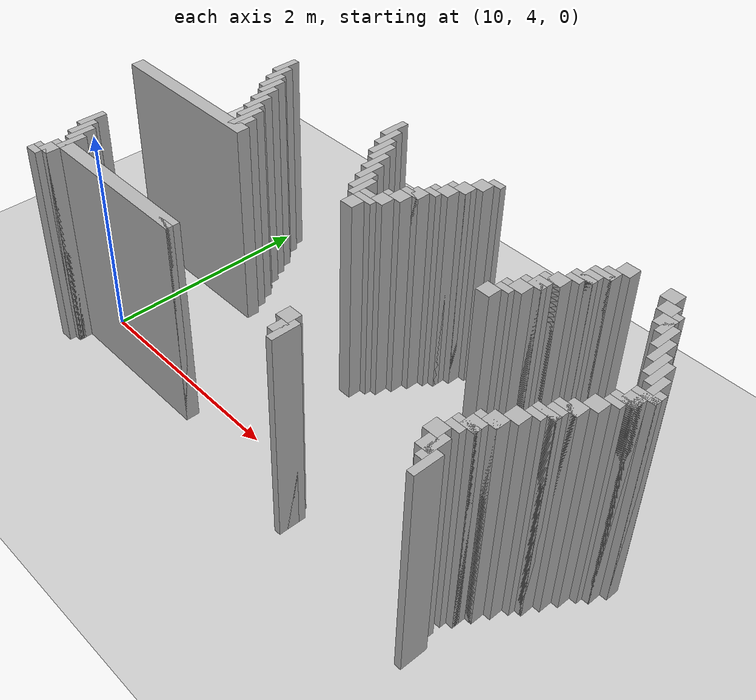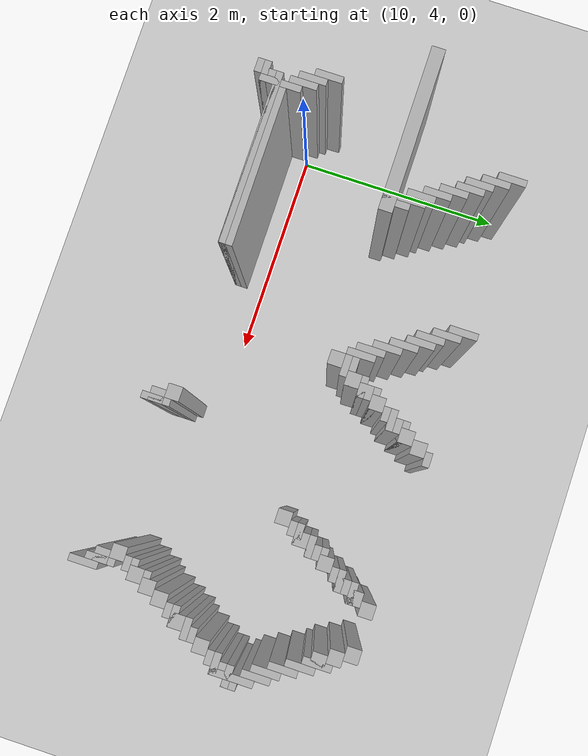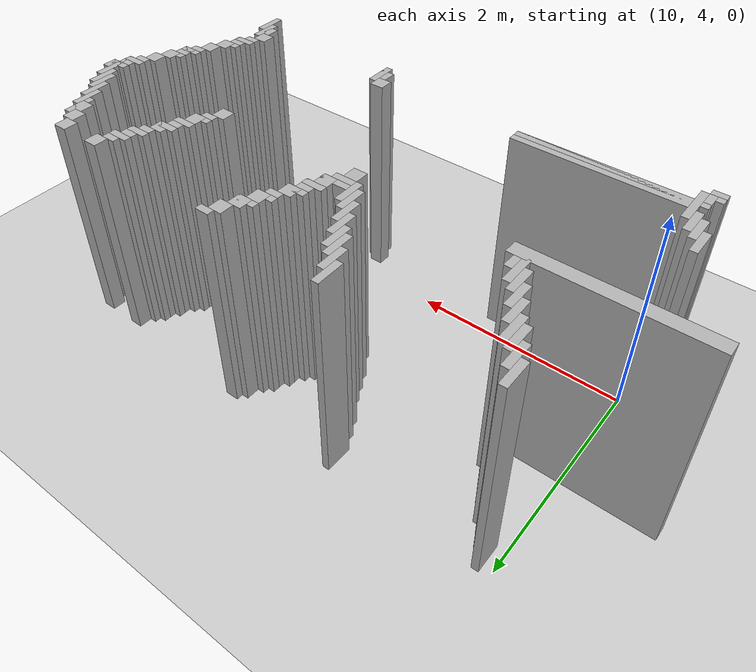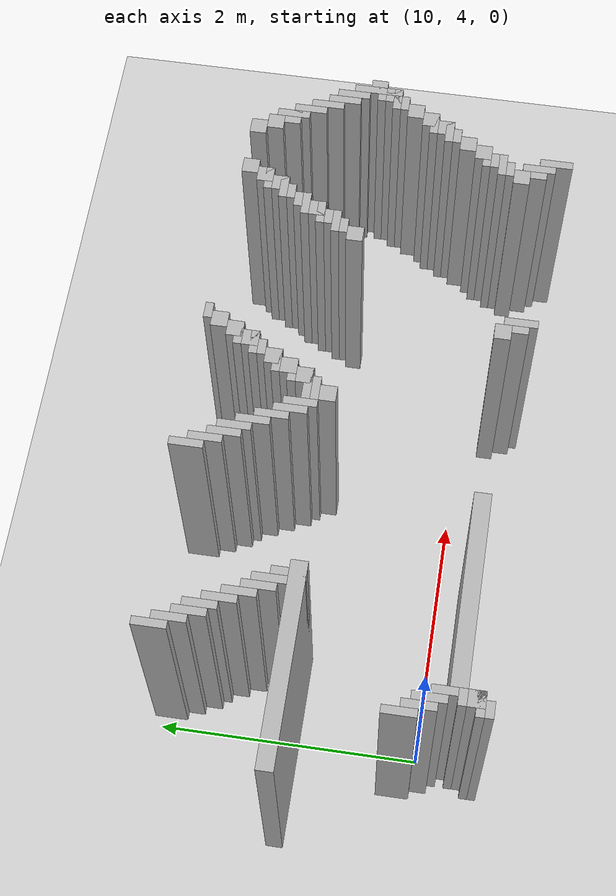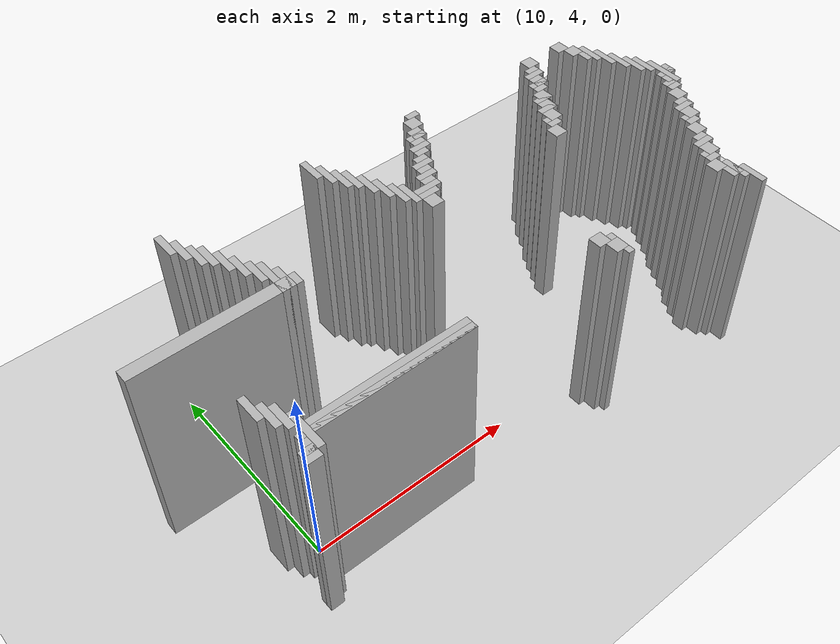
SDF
<sdf version="1.6">
 <world name="slam_world">
  <model name="ground_plane">
   <static>true</static>
   <link name="link">
    <collision name="collision">
     <geometry><plane><normal>0 0 1</normal><size>100 100</size></plane></geometry>
    </collision>
    <visual name="visual">
     <geometry><plane><normal>0 0 1</normal><size>100 100</size></plane></geometry>
     <material>
      <ambient>0.8 0.8 0.8 1</ambient>
      <diffuse>0.8 0.8 0.8 1</diffuse>
      <specular>0.8 0.8 0.8 1</specular>
     </material>
    </visual>
   </link>
  </model>
  <model name="wall_1721">
   <static>true</static>
   <pose>10.117021276595743 5.936170212765957 1.0 0 0 0</pose>
   <link name="link">
    <collision name="collision">
     <geometry><box><size>0.06382978723404255 0.2553191489361702 2.0</size></box></geometry>
    </collision>
    <visual name="visual">
     <geometry><box><size>0.06382978723404255 0.2553191489361702 2.0</size></box></geometry>
     <material><ambient>0.5 0.5 0.5 1</ambient><diffuse>0.7 0.7 0.7 1</diffuse></material>
    </visual>
   </link>
  </model>
  <model name="wall_1722">
   <static>true</static>
   <pose>11.52127659574468 5.936170212765957 1.0 0 0 0</pose>
   <link name="link">
    <collision name="collision">
     <geometry><box><size>0.06382978723404255 0.2553191489361702 2.0</size></box></geometry>
    </collision>
    <visual name="visual">
     <geometry><box><size>0.06382978723404255 0.2553191489361702 2.0</size></box></geometry>
     <material><ambient>0.5 0.5 0.5 1</ambient><diffuse>0.7 0.7 0.7 1</diffuse></material>
    </visual>
   </link>
  </model>
  <model name="wall_1728">
   <static>true</static>
   <pose>12.638297872340425 5.968085106382978 1.0 0 0 0</pose>
   <link name="link">
    <collision name="collision">
     <geometry><box><size>0.1276595744680851 0.06382978723404255 2.0</size></box></geometry>
    </collision>
    <visual name="visual">
     <geometry><box><size>0.1276595744680851 0.06382978723404255 2.0</size></box></geometry>
     <material><ambient>0.5 0.5 0.5 1</ambient><diffuse>0.7 0.7 0.7 1</diffuse></material>
    </visual>
   </link>
  </model>
  <model name="wall_1736">
   <static>true</static>
   <pose>10.180851063829786 5.8085106382978715 1.0 0 0 0</pose>
   <link name="link">
    <collision name="collision">
     <geometry><box><size>0.06382978723404255 0.2553191489361702 2.0</size></box></geometry>
    </collision>
    <visual name="visual">
     <geometry><box><size>0.06382978723404255 0.2553191489361702 2.0</size></box></geometry>
     <material><ambient>0.5 0.5 0.5 1</ambient><diffuse>0.7 0.7 0.7 1</diffuse></material>
    </visual>
   </link>
  </model>
  <model name="wall_1737">
   <static>true</static>
   <pose>11.585106382978722 5.8085106382978715 1.0 0 0 0</pose>
   <link name="link">
    <collision name="collision">
     <geometry><box><size>0.06382978723404255 0.2553191489361702 2.0</size></box></geometry>
    </collision>
    <visual name="visual">
     <geometry><box><size>0.06382978723404255 0.2553191489361702 2.0</size></box></geometry>
     <material><ambient>0.5 0.5 0.5 1</ambient><diffuse>0.7 0.7 0.7 1</diffuse></material>
    </visual>
   </link>
  </model>
  <model name="wall_1738">
   <static>true</static>
   <pose>12.574468085106382 5.872340425531914 1.0 0 0 0</pose>
   <link name="link">
    <collision name="collision">
     <geometry><box><size>0.1276595744680851 0.1276595744680851 2.0</size></box></geometry>
    </collision>
    <visual name="visual">
     <geometry><box><size>0.1276595744680851 0.1276595744680851 2.0</size></box></geometry>
     <material><ambient>0.5 0.5 0.5 1</ambient><diffuse>0.7 0.7 0.7 1</diffuse></material>
    </visual>
   </link>
  </model>
  <model name="wall_1739">
   <static>true</static>
   <pose>13.978723404255318 5.872340425531914 1.0 0 0 0</pose>
   <link name="link">
    <collision name="collision">
     <geometry><box><size>0.1276595744680851 0.1276595744680851 2.0</size></box></geometry>
    </collision>
    <visual name="visual">
     <geometry><box><size>0.1276595744680851 0.1276595744680851 2.0</size></box></geometry>
     <material><ambient>0.5 0.5 0.5 1</ambient><diffuse>0.7 0.7 0.7 1</diffuse></material>
    </visual>
   </link>
  </model>
  <model name="wall_1740">
   <static>true</static>
   <pose>14.361702127659573 5.872340425531914 1.0 0 0 0</pose>
   <link name="link">
    <collision name="collision">
     <geometry><box><size>0.1276595744680851 0.1276595744680851 2.0</size></box></geometry>
    </collision>
    <visual name="visual">
     <geometry><box><size>0.1276595744680851 0.1276595744680851 2.0</size></box></geometry>
     <material><ambient>0.5 0.5 0.5 1</ambient><diffuse>0.7 0.7 0.7 1</diffuse></material>
    </visual>
   </link>
  </model>
  <model name="wall_1746">
   <static>true</static>
   <pose>10.24468085106383 5.680851063829786 1.0 0 0 0</pose>
   <link name="link">
    <collision name="collision">
     <geometry><box><size>0.06382978723404255 0.2553191489361702 2.0</size></box></geometry>
    </collision>
    <visual name="visual">
     <geometry><box><size>0.06382978723404255 0.2553191489361702 2.0</size></box></geometry>
     <material><ambient>0.5 0.5 0.5 1</ambient><diffuse>0.7 0.7 0.7 1</diffuse></material>
    </visual>
   </link>
  </model>
  <model name="wall_1747">
   <static>true</static>
   <pose>11.648936170212766 5.680851063829786 1.0 0 0 0</pose>
   <link name="link">
    <collision name="collision">
     <geometry><box><size>0.06382978723404255 0.2553191489361702 2.0</size></box></geometry>
    </collision>
    <visual name="visual">
     <geometry><box><size>0.06382978723404255 0.2553191489361702 2.0</size></box></geometry>
     <material><ambient>0.5 0.5 0.5 1</ambient><diffuse>0.7 0.7 0.7 1</diffuse></material>
    </visual>
   </link>
  </model>
  <model name="wall_1748">
   <static>true</static>
   <pose>12.51063829787234 5.744680851063829 1.0 0 0 0</pose>
   <link name="link">
    <collision name="collision">
     <geometry><box><size>0.1276595744680851 0.1276595744680851 2.0</size></box></geometry>
    </collision>
    <visual name="visual">
     <geometry><box><size>0.1276595744680851 0.1276595744680851 2.0</size></box></geometry>
     <material><ambient>0.5 0.5 0.5 1</ambient><diffuse>0.7 0.7 0.7 1</diffuse></material>
    </visual>
   </link>
  </model>
  <model name="wall_1749">
   <static>true</static>
   <pose>13.914893617021276 5.744680851063829 1.0 0 0 0</pose>
   <link name="link">
    <collision name="collision">
     <geometry><box><size>0.1276595744680851 0.1276595744680851 2.0</size></box></geometry>
    </collision>
    <visual name="visual">
     <geometry><box><size>0.1276595744680851 0.1276595744680851 2.0</size></box></geometry>
     <material><ambient>0.5 0.5 0.5 1</ambient><diffuse>0.7 0.7 0.7 1</diffuse></material>
    </visual>
   </link>
  </model>
  <model name="wall_1750">
   <static>true</static>
   <pose>14.425531914893616 5.744680851063829 1.0 0 0 0</pose>
   <link name="link">
    <collision name="collision">
     <geometry><box><size>0.1276595744680851 0.1276595744680851 2.0</size></box></geometry>
    </collision>
    <visual name="visual">
     <geometry><box><size>0.1276595744680851 0.1276595744680851 2.0</size></box></geometry>
     <material><ambient>0.5 0.5 0.5 1</ambient><diffuse>0.7 0.7 0.7 1</diffuse></material>
    </visual>
   </link>
  </model>
  <model name="wall_1756">
   <static>true</static>
   <pose>10.308510638297872 5.617021276595744 1.0 0 0 0</pose>
   <link name="link">
    <collision name="collision">
     <geometry><box><size>0.06382978723404255 0.2553191489361702 2.0</size></box></geometry>
    </collision>
    <visual name="visual">
     <geometry><box><size>0.06382978723404255 0.2553191489361702 2.0</size></box></geometry>
     <material><ambient>0.5 0.5 0.5 1</ambient><diffuse>0.7 0.7 0.7 1</diffuse></material>
    </visual>
   </link>
  </model>
  <model name="wall_1757">
   <static>true</static>
   <pose>11.712765957446807 5.617021276595744 1.0 0 0 0</pose>
   <link name="link">
    <collision name="collision">
     <geometry><box><size>0.06382978723404255 0.2553191489361702 2.0</size></box></geometry>
    </collision>
    <visual name="visual">
     <geometry><box><size>0.06382978723404255 0.2553191489361702 2.0</size></box></geometry>
     <material><ambient>0.5 0.5 0.5 1</ambient><diffuse>0.7 0.7 0.7 1</diffuse></material>
    </visual>
   </link>
  </model>
  <model name="wall_1758">
   <static>true</static>
   <pose>12.478723404255318 5.712765957446808 1.0 0 0 0</pose>
   <link name="link">
    <collision name="collision">
     <geometry><box><size>0.19148936170212766 0.06382978723404255 2.0</size></box></geometry>
    </collision>
    <visual name="visual">
     <geometry><box><size>0.19148936170212766 0.06382978723404255 2.0</size></box></geometry>
     <material><ambient>0.5 0.5 0.5 1</ambient><diffuse>0.7 0.7 0.7 1</diffuse></material>
    </visual>
   </link>
  </model>
  <model name="wall_1759">
   <static>true</static>
   <pose>13.882978723404253 5.712765957446808 1.0 0 0 0</pose>
   <link name="link">
    <collision name="collision">
     <geometry><box><size>0.19148936170212766 0.06382978723404255 2.0</size></box></geometry>
    </collision>
    <visual name="visual">
     <geometry><box><size>0.19148936170212766 0.06382978723404255 2.0</size></box></geometry>
     <material><ambient>0.5 0.5 0.5 1</ambient><diffuse>0.7 0.7 0.7 1</diffuse></material>
    </visual>
   </link>
  </model>
  <model name="wall_1760">
   <static>true</static>
   <pose>14.52127659574468 5.617021276595744 1.0 0 0 0</pose>
   <link name="link">
    <collision name="collision">
     <geometry><box><size>0.06382978723404255 0.2553191489361702 2.0</size></box></geometry>
    </collision>
    <visual name="visual">
     <geometry><box><size>0.06382978723404255 0.2553191489361702 2.0</size></box></geometry>
     <material><ambient>0.5 0.5 0.5 1</ambient><diffuse>0.7 0.7 0.7 1</diffuse></material>
    </visual>
   </link>
  </model>
  <model name="wall_1764">
   <static>true</static>
   <pose>12.446808510638297 5.617021276595744 1.0 0 0 0</pose>
   <link name="link">
    <collision name="collision">
     <geometry><box><size>0.1276595744680851 0.1276595744680851 2.0</size></box></geometry>
    </collision>
    <visual name="visual">
     <geometry><box><size>0.1276595744680851 0.1276595744680851 2.0</size></box></geometry>
     <material><ambient>0.5 0.5 0.5 1</ambient><diffuse>0.7 0.7 0.7 1</diffuse></material>
    </visual>
   </link>
  </model>
  <model name="wall_1765">
   <static>true</static>
   <pose>13.851063829787233 5.617021276595744 1.0 0 0 0</pose>
   <link name="link">
    <collision name="collision">
     <geometry><box><size>0.1276595744680851 0.1276595744680851 2.0</size></box></geometry>
    </collision>
    <visual name="visual">
     <geometry><box><size>0.1276595744680851 0.1276595744680851 2.0</size></box></geometry>
     <material><ambient>0.5 0.5 0.5 1</ambient><diffuse>0.7 0.7 0.7 1</diffuse></material>
    </visual>
   </link>
  </model>
  <model name="wall_1766">
   <static>true</static>
   <pose>14.489361702127658 5.617021276595744 1.0 0 0 0</pose>
   <link name="link">
    <collision name="collision">
     <geometry><box><size>0.1276595744680851 0.1276595744680851 2.0</size></box></geometry>
    </collision>
    <visual name="visual">
     <geometry><box><size>0.1276595744680851 0.1276595744680851 2.0</size></box></geometry>
     <material><ambient>0.5 0.5 0.5 1</ambient><diffuse>0.7 0.7 0.7 1</diffuse></material>
    </visual>
   </link>
  </model>
  <model name="wall_1772">
   <static>true</static>
   <pose>10.372340425531915 5.489361702127659 1.0 0 0 0</pose>
   <link name="link">
    <collision name="collision">
     <geometry><box><size>0.06382978723404255 0.2553191489361702 2.0</size></box></geometry>
    </collision>
    <visual name="visual">
     <geometry><box><size>0.06382978723404255 0.2553191489361702 2.0</size></box></geometry>
     <material><ambient>0.5 0.5 0.5 1</ambient><diffuse>0.7 0.7 0.7 1</diffuse></material>
    </visual>
   </link>
  </model>
  <model name="wall_1773">
   <static>true</static>
   <pose>11.77659574468085 5.489361702127659 1.0 0 0 0</pose>
   <link name="link">
    <collision name="collision">
     <geometry><box><size>0.06382978723404255 0.2553191489361702 2.0</size></box></geometry>
    </collision>
    <visual name="visual">
     <geometry><box><size>0.06382978723404255 0.2553191489361702 2.0</size></box></geometry>
     <material><ambient>0.5 0.5 0.5 1</ambient><diffuse>0.7 0.7 0.7 1</diffuse></material>
    </visual>
   </link>
  </model>
  <model name="wall_1774">
   <static>true</static>
   <pose>12.414893617021276 5.585106382978723 1.0 0 0 0</pose>
   <link name="link">
    <collision name="collision">
     <geometry><box><size>0.19148936170212766 0.06382978723404255 2.0</size></box></geometry>
    </collision>
    <visual name="visual">
     <geometry><box><size>0.19148936170212766 0.06382978723404255 2.0</size></box></geometry>
     <material><ambient>0.5 0.5 0.5 1</ambient><diffuse>0.7 0.7 0.7 1</diffuse></material>
    </visual>
   </link>
  </model>
  <model name="wall_1775">
   <static>true</static>
   <pose>13.819148936170212 5.585106382978723 1.0 0 0 0</pose>
   <link name="link">
    <collision name="collision">
     <geometry><box><size>0.19148936170212766 0.06382978723404255 2.0</size></box></geometry>
    </collision>
    <visual name="visual">
     <geometry><box><size>0.19148936170212766 0.06382978723404255 2.0</size></box></geometry>
     <material><ambient>0.5 0.5 0.5 1</ambient><diffuse>0.7 0.7 0.7 1</diffuse></material>
    </visual>
   </link>
  </model>
  <model name="wall_1776">
   <static>true</static>
   <pose>14.585106382978722 5.489361702127659 1.0 0 0 0</pose>
   <link name="link">
    <collision name="collision">
     <geometry><box><size>0.06382978723404255 0.2553191489361702 2.0</size></box></geometry>
    </collision>
    <visual name="visual">
     <geometry><box><size>0.06382978723404255 0.2553191489361702 2.0</size></box></geometry>
     <material><ambient>0.5 0.5 0.5 1</ambient><diffuse>0.7 0.7 0.7 1</diffuse></material>
    </visual>
   </link>
  </model>
  <model name="wall_1779">
   <static>true</static>
   <pose>12.382978723404255 5.5212765957446805 1.0 0 0 0</pose>
   <link name="link">
    <collision name="collision">
     <geometry><box><size>0.1276595744680851 0.06382978723404255 2.0</size></box></geometry>
    </collision>
    <visual name="visual">
     <geometry><box><size>0.1276595744680851 0.06382978723404255 2.0</size></box></geometry>
     <material><ambient>0.5 0.5 0.5 1</ambient><diffuse>0.7 0.7 0.7 1</diffuse></material>
    </visual>
   </link>
  </model>
  <model name="wall_1780">
   <static>true</static>
   <pose>13.787234042553191 5.5212765957446805 1.0 0 0 0</pose>
   <link name="link">
    <collision name="collision">
     <geometry><box><size>0.1276595744680851 0.06382978723404255 2.0</size></box></geometry>
    </collision>
    <visual name="visual">
     <geometry><box><size>0.1276595744680851 0.06382978723404255 2.0</size></box></geometry>
     <material><ambient>0.5 0.5 0.5 1</ambient><diffuse>0.7 0.7 0.7 1</diffuse></material>
    </visual>
   </link>
  </model>
  <model name="wall_1786">
   <static>true</static>
   <pose>10.436170212765957 5.361702127659574 1.0 0 0 0</pose>
   <link name="link">
    <collision name="collision">
     <geometry><box><size>0.06382978723404255 0.2553191489361702 2.0</size></box></geometry>
    </collision>
    <visual name="visual">
     <geometry><box><size>0.06382978723404255 0.2553191489361702 2.0</size></box></geometry>
     <material><ambient>0.5 0.5 0.5 1</ambient><diffuse>0.7 0.7 0.7 1</diffuse></material>
    </visual>
   </link>
  </model>
  <model name="wall_1787">
   <static>true</static>
   <pose>11.840425531914892 5.361702127659574 1.0 0 0 0</pose>
   <link name="link">
    <collision name="collision">
     <geometry><box><size>0.06382978723404255 0.2553191489361702 2.0</size></box></geometry>
    </collision>
    <visual name="visual">
     <geometry><box><size>0.06382978723404255 0.2553191489361702 2.0</size></box></geometry>
     <material><ambient>0.5 0.5 0.5 1</ambient><diffuse>0.7 0.7 0.7 1</diffuse></material>
    </visual>
   </link>
  </model>
  <model name="wall_1788">
   <static>true</static>
   <pose>12.319148936170212 5.425531914893616 1.0 0 0 0</pose>
   <link name="link">
    <collision name="collision">
     <geometry><box><size>0.1276595744680851 0.1276595744680851 2.0</size></box></geometry>
    </collision>
    <visual name="visual">
     <geometry><box><size>0.1276595744680851 0.1276595744680851 2.0</size></box></geometry>
     <material><ambient>0.5 0.5 0.5 1</ambient><diffuse>0.7 0.7 0.7 1</diffuse></material>
    </visual>
   </link>
  </model>
  <model name="wall_1789">
   <static>true</static>
   <pose>13.723404255319148 5.425531914893616 1.0 0 0 0</pose>
   <link name="link">
    <collision name="collision">
     <geometry><box><size>0.1276595744680851 0.1276595744680851 2.0</size></box></geometry>
    </collision>
    <visual name="visual">
     <geometry><box><size>0.1276595744680851 0.1276595744680851 2.0</size></box></geometry>
     <material><ambient>0.5 0.5 0.5 1</ambient><diffuse>0.7 0.7 0.7 1</diffuse></material>
    </visual>
   </link>
  </model>
  <model name="wall_1790">
   <static>true</static>
   <pose>14.648936170212766 5.361702127659574 1.0 0 0 0</pose>
   <link name="link">
    <collision name="collision">
     <geometry><box><size>0.06382978723404255 0.2553191489361702 2.0</size></box></geometry>
    </collision>
    <visual name="visual">
     <geometry><box><size>0.06382978723404255 0.2553191489361702 2.0</size></box></geometry>
     <material><ambient>0.5 0.5 0.5 1</ambient><diffuse>0.7 0.7 0.7 1</diffuse></material>
    </visual>
   </link>
  </model>
  <model name="wall_1793">
   <static>true</static>
   <pose>12.287234042553191 5.3936170212765955 1.0 0 0 0</pose>
   <link name="link">
    <collision name="collision">
     <geometry><box><size>0.19148936170212766 0.06382978723404255 2.0</size></box></geometry>
    </collision>
    <visual name="visual">
     <geometry><box><size>0.19148936170212766 0.06382978723404255 2.0</size></box></geometry>
     <material><ambient>0.5 0.5 0.5 1</ambient><diffuse>0.7 0.7 0.7 1</diffuse></material>
    </visual>
   </link>
  </model>
  <model name="wall_1794">
   <static>true</static>
   <pose>13.691489361702127 5.3936170212765955 1.0 0 0 0</pose>
   <link name="link">
    <collision name="collision">
     <geometry><box><size>0.19148936170212766 0.06382978723404255 2.0</size></box></geometry>
    </collision>
    <visual name="visual">
     <geometry><box><size>0.19148936170212766 0.06382978723404255 2.0</size></box></geometry>
     <material><ambient>0.5 0.5 0.5 1</ambient><diffuse>0.7 0.7 0.7 1</diffuse></material>
    </visual>
   </link>
  </model>
  <model name="wall_1800">
   <static>true</static>
   <pose>10.5 5.234042553191489 1.0 0 0 0</pose>
   <link name="link">
    <collision name="collision">
     <geometry><box><size>0.06382978723404255 0.2553191489361702 2.0</size></box></geometry>
    </collision>
    <visual name="visual">
     <geometry><box><size>0.06382978723404255 0.2553191489361702 2.0</size></box></geometry>
     <material><ambient>0.5 0.5 0.5 1</ambient><diffuse>0.7 0.7 0.7 1</diffuse></material>
    </visual>
   </link>
  </model>
  <model name="wall_1801">
   <static>true</static>
   <pose>11.904255319148936 5.234042553191489 1.0 0 0 0</pose>
   <link name="link">
    <collision name="collision">
     <geometry><box><size>0.06382978723404255 0.2553191489361702 2.0</size></box></geometry>
    </collision>
    <visual name="visual">
     <geometry><box><size>0.06382978723404255 0.2553191489361702 2.0</size></box></geometry>
     <material><ambient>0.5 0.5 0.5 1</ambient><diffuse>0.7 0.7 0.7 1</diffuse></material>
    </visual>
   </link>
  </model>
  <model name="wall_1802">
   <static>true</static>
   <pose>12.25531914893617 5.297872340425531 1.0 0 0 0</pose>
   <link name="link">
    <collision name="collision">
     <geometry><box><size>0.1276595744680851 0.1276595744680851 2.0</size></box></geometry>
    </collision>
    <visual name="visual">
     <geometry><box><size>0.1276595744680851 0.1276595744680851 2.0</size></box></geometry>
     <material><ambient>0.5 0.5 0.5 1</ambient><diffuse>0.7 0.7 0.7 1</diffuse></material>
    </visual>
   </link>
  </model>
  <model name="wall_1803">
   <static>true</static>
   <pose>13.659574468085106 5.297872340425531 1.0 0 0 0</pose>
   <link name="link">
    <collision name="collision">
     <geometry><box><size>0.1276595744680851 0.1276595744680851 2.0</size></box></geometry>
    </collision>
    <visual name="visual">
     <geometry><box><size>0.1276595744680851 0.1276595744680851 2.0</size></box></geometry>
     <material><ambient>0.5 0.5 0.5 1</ambient><diffuse>0.7 0.7 0.7 1</diffuse></material>
    </visual>
   </link>
  </model>
  <model name="wall_1804">
   <static>true</static>
   <pose>14.712765957446807 5.234042553191489 1.0 0 0 0</pose>
   <link name="link">
    <collision name="collision">
     <geometry><box><size>0.06382978723404255 0.2553191489361702 2.0</size></box></geometry>
    </collision>
    <visual name="visual">
     <geometry><box><size>0.06382978723404255 0.2553191489361702 2.0</size></box></geometry>
     <material><ambient>0.5 0.5 0.5 1</ambient><diffuse>0.7 0.7 0.7 1</diffuse></material>
    </visual>
   </link>
  </model>
  <model name="wall_1810">
   <static>true</static>
   <pose>10.563829787234042 5.106382978723404 1.0 0 0 0</pose>
   <link name="link">
    <collision name="collision">
     <geometry><box><size>0.06382978723404255 0.3829787234042553 2.0</size></box></geometry>
    </collision>
    <visual name="visual">
     <geometry><box><size>0.06382978723404255 0.3829787234042553 2.0</size></box></geometry>
     <material><ambient>0.5 0.5 0.5 1</ambient><diffuse>0.7 0.7 0.7 1</diffuse></material>
    </visual>
   </link>
  </model>
  <model name="wall_1811">
   <static>true</static>
   <pose>11.968085106382977 5.170212765957446 1.0 0 0 0</pose>
   <link name="link">
    <collision name="collision">
     <geometry><box><size>0.06382978723404255 0.2553191489361702 2.0</size></box></geometry>
    </collision>
    <visual name="visual">
     <geometry><box><size>0.06382978723404255 0.2553191489361702 2.0</size></box></geometry>
     <material><ambient>0.5 0.5 0.5 1</ambient><diffuse>0.7 0.7 0.7 1</diffuse></material>
    </visual>
   </link>
  </model>
  <model name="wall_1812">
   <static>true</static>
   <pose>12.223404255319148 5.26595744680851 1.0 0 0 0</pose>
   <link name="link">
    <collision name="collision">
     <geometry><box><size>0.19148936170212766 0.06382978723404255 2.0</size></box></geometry>
    </collision>
    <visual name="visual">
     <geometry><box><size>0.19148936170212766 0.06382978723404255 2.0</size></box></geometry>
     <material><ambient>0.5 0.5 0.5 1</ambient><diffuse>0.7 0.7 0.7 1</diffuse></material>
    </visual>
   </link>
  </model>
  <model name="wall_1813">
   <static>true</static>
   <pose>13.627659574468083 5.26595744680851 1.0 0 0 0</pose>
   <link name="link">
    <collision name="collision">
     <geometry><box><size>0.19148936170212766 0.06382978723404255 2.0</size></box></geometry>
    </collision>
    <visual name="visual">
     <geometry><box><size>0.19148936170212766 0.06382978723404255 2.0</size></box></geometry>
     <material><ambient>0.5 0.5 0.5 1</ambient><diffuse>0.7 0.7 0.7 1</diffuse></material>
    </visual>
   </link>
  </model>
  <model name="wall_1814">
   <static>true</static>
   <pose>14.77659574468085 5.170212765957446 1.0 0 0 0</pose>
   <link name="link">
    <collision name="collision">
     <geometry><box><size>0.06382978723404255 0.2553191489361702 2.0</size></box></geometry>
    </collision>
    <visual name="visual">
     <geometry><box><size>0.06382978723404255 0.2553191489361702 2.0</size></box></geometry>
     <material><ambient>0.5 0.5 0.5 1</ambient><diffuse>0.7 0.7 0.7 1</diffuse></material>
    </visual>
   </link>
  </model>
  <model name="wall_1817">
   <static>true</static>
   <pose>12.191489361702127 5.170212765957446 1.0 0 0 0</pose>
   <link name="link">
    <collision name="collision">
     <geometry><box><size>0.1276595744680851 0.1276595744680851 2.0</size></box></geometry>
    </collision>
    <visual name="visual">
     <geometry><box><size>0.1276595744680851 0.1276595744680851 2.0</size></box></geometry>
     <material><ambient>0.5 0.5 0.5 1</ambient><diffuse>0.7 0.7 0.7 1</diffuse></material>
    </visual>
   </link>
  </model>
  <model name="wall_1818">
   <static>true</static>
   <pose>13.595744680851062 5.170212765957446 1.0 0 0 0</pose>
   <link name="link">
    <collision name="collision">
     <geometry><box><size>0.1276595744680851 0.1276595744680851 2.0</size></box></geometry>
    </collision>
    <visual name="visual">
     <geometry><box><size>0.1276595744680851 0.1276595744680851 2.0</size></box></geometry>
     <material><ambient>0.5 0.5 0.5 1</ambient><diffuse>0.7 0.7 0.7 1</diffuse></material>
    </visual>
   </link>
  </model>
  <model name="wall_1822">
   <static>true</static>
   <pose>10.627659574468085 5.042553191489361 1.0 0 0 0</pose>
   <link name="link">
    <collision name="collision">
     <geometry><box><size>0.06382978723404255 0.2553191489361702 2.0</size></box></geometry>
    </collision>
    <visual name="visual">
     <geometry><box><size>0.06382978723404255 0.2553191489361702 2.0</size></box></geometry>
     <material><ambient>0.5 0.5 0.5 1</ambient><diffuse>0.7 0.7 0.7 1</diffuse></material>
    </visual>
   </link>
  </model>
  <model name="wall_1823">
   <static>true</static>
   <pose>12.127659574468083 5.138297872340425 1.0 0 0 0</pose>
   <link name="link">
    <collision name="collision">
     <geometry><box><size>0.2553191489361702 0.06382978723404255 2.0</size></box></geometry>
    </collision>
    <visual name="visual">
     <geometry><box><size>0.2553191489361702 0.06382978723404255 2.0</size></box></geometry>
     <material><ambient>0.5 0.5 0.5 1</ambient><diffuse>0.7 0.7 0.7 1</diffuse></material>
    </visual>
   </link>
  </model>
  <model name="wall_1824">
   <static>true</static>
   <pose>13.563829787234042 5.138297872340425 1.0 0 0 0</pose>
   <link name="link">
    <collision name="collision">
     <geometry><box><size>0.19148936170212766 0.06382978723404255 2.0</size></box></geometry>
    </collision>
    <visual name="visual">
     <geometry><box><size>0.19148936170212766 0.06382978723404255 2.0</size></box></geometry>
     <material><ambient>0.5 0.5 0.5 1</ambient><diffuse>0.7 0.7 0.7 1</diffuse></material>
    </visual>
   </link>
  </model>
  <model name="wall_1825">
   <static>true</static>
   <pose>14.840425531914892 4.978723404255319 1.0 0 0 0</pose>
   <link name="link">
    <collision name="collision">
     <geometry><box><size>0.06382978723404255 0.3829787234042553 2.0</size></box></geometry>
    </collision>
    <visual name="visual">
     <geometry><box><size>0.06382978723404255 0.3829787234042553 2.0</size></box></geometry>
     <material><ambient>0.5 0.5 0.5 1</ambient><diffuse>0.7 0.7 0.7 1</diffuse></material>
    </visual>
   </link>
  </model>
  <model name="wall_1828">
   <static>true</static>
   <pose>12.095744680851062 5.074468085106383 1.0 0 0 0</pose>
   <link name="link">
    <collision name="collision">
     <geometry><box><size>0.19148936170212766 0.06382978723404255 2.0</size></box></geometry>
    </collision>
    <visual name="visual">
     <geometry><box><size>0.19148936170212766 0.06382978723404255 2.0</size></box></geometry>
     <material><ambient>0.5 0.5 0.5 1</ambient><diffuse>0.7 0.7 0.7 1</diffuse></material>
    </visual>
   </link>
  </model>
  <model name="wall_1829">
   <static>true</static>
   <pose>13.53191489361702 5.074468085106383 1.0 0 0 0</pose>
   <link name="link">
    <collision name="collision">
     <geometry><box><size>0.1276595744680851 0.06382978723404255 2.0</size></box></geometry>
    </collision>
    <visual name="visual">
     <geometry><box><size>0.1276595744680851 0.06382978723404255 2.0</size></box></geometry>
     <material><ambient>0.5 0.5 0.5 1</ambient><diffuse>0.7 0.7 0.7 1</diffuse></material>
    </visual>
   </link>
  </model>
  <model name="wall_1833">
   <static>true</static>
   <pose>9.957446808510637 4.978723404255319 1.0 0 0 0</pose>
   <link name="link">
    <collision name="collision">
     <geometry><box><size>1.5319148936170213 0.1276595744680851 2.0</size></box></geometry>
    </collision>
    <visual name="visual">
     <geometry><box><size>1.5319148936170213 0.1276595744680851 2.0</size></box></geometry>
     <material><ambient>0.5 0.5 0.5 1</ambient><diffuse>0.7 0.7 0.7 1</diffuse></material>
    </visual>
   </link>
  </model>
  <model name="wall_1834">
   <static>true</static>
   <pose>12.063829787234042 4.978723404255319 1.0 0 0 0</pose>
   <link name="link">
    <collision name="collision">
     <geometry><box><size>0.1276595744680851 0.1276595744680851 2.0</size></box></geometry>
    </collision>
    <visual name="visual">
     <geometry><box><size>0.1276595744680851 0.1276595744680851 2.0</size></box></geometry>
     <material><ambient>0.5 0.5 0.5 1</ambient><diffuse>0.7 0.7 0.7 1</diffuse></material>
    </visual>
   </link>
  </model>
  <model name="wall_1835">
   <static>true</static>
   <pose>13.468085106382977 4.978723404255319 1.0 0 0 0</pose>
   <link name="link">
    <collision name="collision">
     <geometry><box><size>0.1276595744680851 0.1276595744680851 2.0</size></box></geometry>
    </collision>
    <visual name="visual">
     <geometry><box><size>0.1276595744680851 0.1276595744680851 2.0</size></box></geometry>
     <material><ambient>0.5 0.5 0.5 1</ambient><diffuse>0.7 0.7 0.7 1</diffuse></material>
    </visual>
   </link>
  </model>
  <model name="wall_1836">
   <static>true</static>
   <pose>14.904255319148936 4.978723404255319 1.0 0 0 0</pose>
   <link name="link">
    <collision name="collision">
     <geometry><box><size>0.06382978723404255 0.1276595744680851 2.0</size></box></geometry>
    </collision>
    <visual name="visual">
     <geometry><box><size>0.06382978723404255 0.1276595744680851 2.0</size></box></geometry>
     <material><ambient>0.5 0.5 0.5 1</ambient><diffuse>0.7 0.7 0.7 1</diffuse></material>
    </visual>
   </link>
  </model>
  <model name="wall_1838">
   <static>true</static>
   <pose>14.840425531914892 4.946808510638298 1.0 0 0 0</pose>
   <link name="link">
    <collision name="collision">
     <geometry><box><size>0.19148936170212766 0.06382978723404255 2.0</size></box></geometry>
    </collision>
    <visual name="visual">
     <geometry><box><size>0.19148936170212766 0.06382978723404255 2.0</size></box></geometry>
     <material><ambient>0.5 0.5 0.5 1</ambient><diffuse>0.7 0.7 0.7 1</diffuse></material>
    </visual>
   </link>
  </model>
  <model name="wall_1842">
   <static>true</static>
   <pose>14.808510638297872 4.8510638297872335 1.0 0 0 0</pose>
   <link name="link">
    <collision name="collision">
     <geometry><box><size>0.1276595744680851 0.1276595744680851 2.0</size></box></geometry>
    </collision>
    <visual name="visual">
     <geometry><box><size>0.1276595744680851 0.1276595744680851 2.0</size></box></geometry>
     <material><ambient>0.5 0.5 0.5 1</ambient><diffuse>0.7 0.7 0.7 1</diffuse></material>
    </visual>
   </link>
  </model>
  <model name="wall_1847">
   <static>true</static>
   <pose>14.77659574468085 4.819148936170213 1.0 0 0 0</pose>
   <link name="link">
    <collision name="collision">
     <geometry><box><size>0.19148936170212766 0.06382978723404255 2.0</size></box></geometry>
    </collision>
    <visual name="visual">
     <geometry><box><size>0.19148936170212766 0.06382978723404255 2.0</size></box></geometry>
     <material><ambient>0.5 0.5 0.5 1</ambient><diffuse>0.7 0.7 0.7 1</diffuse></material>
    </visual>
   </link>
  </model>
  <model name="wall_1853">
   <static>true</static>
   <pose>14.744680851063828 4.75531914893617 1.0 0 0 0</pose>
   <link name="link">
    <collision name="collision">
     <geometry><box><size>0.1276595744680851 0.06382978723404255 2.0</size></box></geometry>
    </collision>
    <visual name="visual">
     <geometry><box><size>0.1276595744680851 0.06382978723404255 2.0</size></box></geometry>
     <material><ambient>0.5 0.5 0.5 1</ambient><diffuse>0.7 0.7 0.7 1</diffuse></material>
    </visual>
   </link>
  </model>
  <model name="wall_1859">
   <static>true</static>
   <pose>14.680851063829786 4.659574468085106 1.0 0 0 0</pose>
   <link name="link">
    <collision name="collision">
     <geometry><box><size>0.1276595744680851 0.1276595744680851 2.0</size></box></geometry>
    </collision>
    <visual name="visual">
     <geometry><box><size>0.1276595744680851 0.1276595744680851 2.0</size></box></geometry>
     <material><ambient>0.5 0.5 0.5 1</ambient><diffuse>0.7 0.7 0.7 1</diffuse></material>
    </visual>
   </link>
  </model>
  <model name="wall_1865">
   <static>true</static>
   <pose>14.617021276595743 4.531914893617021 1.0 0 0 0</pose>
   <link name="link">
    <collision name="collision">
     <geometry><box><size>0.1276595744680851 0.1276595744680851 2.0</size></box></geometry>
    </collision>
    <visual name="visual">
     <geometry><box><size>0.1276595744680851 0.1276595744680851 2.0</size></box></geometry>
     <material><ambient>0.5 0.5 0.5 1</ambient><diffuse>0.7 0.7 0.7 1</diffuse></material>
    </visual>
   </link>
  </model>
  <model name="wall_1871">
   <static>true</static>
   <pose>14.585106382978722 4.5 1.0 0 0 0</pose>
   <link name="link">
    <collision name="collision">
     <geometry><box><size>0.19148936170212766 0.06382978723404255 2.0</size></box></geometry>
    </collision>
    <visual name="visual">
     <geometry><box><size>0.19148936170212766 0.06382978723404255 2.0</size></box></geometry>
     <material><ambient>0.5 0.5 0.5 1</ambient><diffuse>0.7 0.7 0.7 1</diffuse></material>
    </visual>
   </link>
  </model>
  <model name="wall_1875">
   <static>true</static>
   <pose>14.553191489361701 4.404255319148936 1.0 0 0 0</pose>
   <link name="link">
    <collision name="collision">
     <geometry><box><size>0.1276595744680851 0.1276595744680851 2.0</size></box></geometry>
    </collision>
    <visual name="visual">
     <geometry><box><size>0.1276595744680851 0.1276595744680851 2.0</size></box></geometry>
     <material><ambient>0.5 0.5 0.5 1</ambient><diffuse>0.7 0.7 0.7 1</diffuse></material>
    </visual>
   </link>
  </model>
  <model name="wall_1881">
   <static>true</static>
   <pose>14.52127659574468 4.372340425531915 1.0 0 0 0</pose>
   <link name="link">
    <collision name="collision">
     <geometry><box><size>0.19148936170212766 0.06382978723404255 2.0</size></box></geometry>
    </collision>
    <visual name="visual">
     <geometry><box><size>0.19148936170212766 0.06382978723404255 2.0</size></box></geometry>
     <material><ambient>0.5 0.5 0.5 1</ambient><diffuse>0.7 0.7 0.7 1</diffuse></material>
    </visual>
   </link>
  </model>
  <model name="wall_1884">
   <static>true</static>
   <pose>14.489361702127658 4.308510638297872 1.0 0 0 0</pose>
   <link name="link">
    <collision name="collision">
     <geometry><box><size>0.1276595744680851 0.06382978723404255 2.0</size></box></geometry>
    </collision>
    <visual name="visual">
     <geometry><box><size>0.1276595744680851 0.06382978723404255 2.0</size></box></geometry>
     <material><ambient>0.5 0.5 0.5 1</ambient><diffuse>0.7 0.7 0.7 1</diffuse></material>
    </visual>
   </link>
  </model>
  <model name="wall_1889">
   <static>true</static>
   <pose>9.734042553191488 4.148936170212766 1.0 0 0 0</pose>
   <link name="link">
    <collision name="collision">
     <geometry><box><size>0.06382978723404255 0.2553191489361702 2.0</size></box></geometry>
    </collision>
    <visual name="visual">
     <geometry><box><size>0.06382978723404255 0.2553191489361702 2.0</size></box></geometry>
     <material><ambient>0.5 0.5 0.5 1</ambient><diffuse>0.7 0.7 0.7 1</diffuse></material>
    </visual>
   </link>
  </model>
  <model name="wall_1890">
   <static>true</static>
   <pose>14.425531914893616 4.212765957446808 1.0 0 0 0</pose>
   <link name="link">
    <collision name="collision">
     <geometry><box><size>0.1276595744680851 0.1276595744680851 2.0</size></box></geometry>
    </collision>
    <visual name="visual">
     <geometry><box><size>0.1276595744680851 0.1276595744680851 2.0</size></box></geometry>
     <material><ambient>0.5 0.5 0.5 1</ambient><diffuse>0.7 0.7 0.7 1</diffuse></material>
    </visual>
   </link>
  </model>
  <model name="wall_1895">
   <static>true</static>
   <pose>9.797872340425531 4.0212765957446805 1.0 0 0 0</pose>
   <link name="link">
    <collision name="collision">
     <geometry><box><size>0.06382978723404255 0.2553191489361702 2.0</size></box></geometry>
    </collision>
    <visual name="visual">
     <geometry><box><size>0.06382978723404255 0.2553191489361702 2.0</size></box></geometry>
     <material><ambient>0.5 0.5 0.5 1</ambient><diffuse>0.7 0.7 0.7 1</diffuse></material>
    </visual>
   </link>
  </model>
  <model name="wall_1896">
   <static>true</static>
   <pose>14.361702127659573 4.085106382978723 1.0 0 0 0</pose>
   <link name="link">
    <collision name="collision">
     <geometry><box><size>0.1276595744680851 0.1276595744680851 2.0</size></box></geometry>
    </collision>
    <visual name="visual">
     <geometry><box><size>0.1276595744680851 0.1276595744680851 2.0</size></box></geometry>
     <material><ambient>0.5 0.5 0.5 1</ambient><diffuse>0.7 0.7 0.7 1</diffuse></material>
    </visual>
   </link>
  </model>
  <model name="wall_1901">
   <static>true</static>
   <pose>9.861702127659573 3.957446808510638 1.0 0 0 0</pose>
   <link name="link">
    <collision name="collision">
     <geometry><box><size>0.06382978723404255 0.2553191489361702 2.0</size></box></geometry>
    </collision>
    <visual name="visual">
     <geometry><box><size>0.06382978723404255 0.2553191489361702 2.0</size></box></geometry>
     <material><ambient>0.5 0.5 0.5 1</ambient><diffuse>0.7 0.7 0.7 1</diffuse></material>
    </visual>
   </link>
  </model>
  <model name="wall_1902">
   <static>true</static>
   <pose>14.329787234042552 4.053191489361701 1.0 0 0 0</pose>
   <link name="link">
    <collision name="collision">
     <geometry><box><size>0.19148936170212766 0.06382978723404255 2.0</size></box></geometry>
    </collision>
    <visual name="visual">
     <geometry><box><size>0.19148936170212766 0.06382978723404255 2.0</size></box></geometry>
     <material><ambient>0.5 0.5 0.5 1</ambient><diffuse>0.7 0.7 0.7 1</diffuse></material>
    </visual>
   </link>
  </model>
  <model name="wall_1905">
   <static>true</static>
   <pose>14.297872340425531 3.957446808510638 1.0 0 0 0</pose>
   <link name="link">
    <collision name="collision">
     <geometry><box><size>0.1276595744680851 0.1276595744680851 2.0</size></box></geometry>
    </collision>
    <visual name="visual">
     <geometry><box><size>0.1276595744680851 0.1276595744680851 2.0</size></box></geometry>
     <material><ambient>0.5 0.5 0.5 1</ambient><diffuse>0.7 0.7 0.7 1</diffuse></material>
    </visual>
   </link>
  </model>
  <model name="wall_1910">
   <static>true</static>
   <pose>9.925531914893616 3.7659574468085104 1.0 0 0 0</pose>
   <link name="link">
    <collision name="collision">
     <geometry><box><size>0.06382978723404255 0.3829787234042553 2.0</size></box></geometry>
    </collision>
    <visual name="visual">
     <geometry><box><size>0.06382978723404255 0.3829787234042553 2.0</size></box></geometry>
     <material><ambient>0.5 0.5 0.5 1</ambient><diffuse>0.7 0.7 0.7 1</diffuse></material>
    </visual>
   </link>
  </model>
  <model name="wall_1911">
   <static>true</static>
   <pose>14.265957446808509 3.9255319148936167 1.0 0 0 0</pose>
   <link name="link">
    <collision name="collision">
     <geometry><box><size>0.19148936170212766 0.06382978723404255 2.0</size></box></geometry>
    </collision>
    <visual name="visual">
     <geometry><box><size>0.19148936170212766 0.06382978723404255 2.0</size></box></geometry>
     <material><ambient>0.5 0.5 0.5 1</ambient><diffuse>0.7 0.7 0.7 1</diffuse></material>
    </visual>
   </link>
  </model>
  <model name="wall_1914">
   <static>true</static>
   <pose>14.234042553191488 3.861702127659574 1.0 0 0 0</pose>
   <link name="link">
    <collision name="collision">
     <geometry><box><size>0.1276595744680851 0.06382978723404255 2.0</size></box></geometry>
    </collision>
    <visual name="visual">
     <geometry><box><size>0.1276595744680851 0.06382978723404255 2.0</size></box></geometry>
     <material><ambient>0.5 0.5 0.5 1</ambient><diffuse>0.7 0.7 0.7 1</diffuse></material>
    </visual>
   </link>
  </model>
  <model name="wall_1920">
   <static>true</static>
   <pose>10.691489361702127 3.7659574468085104 1.0 0 0 0</pose>
   <link name="link">
    <collision name="collision">
     <geometry><box><size>1.4680851063829785 0.1276595744680851 2.0</size></box></geometry>
    </collision>
    <visual name="visual">
     <geometry><box><size>1.4680851063829785 0.1276595744680851 2.0</size></box></geometry>
     <material><ambient>0.5 0.5 0.5 1</ambient><diffuse>0.7 0.7 0.7 1</diffuse></material>
    </visual>
   </link>
  </model>
  <model name="wall_1921">
   <static>true</static>
   <pose>12.76595744680851 3.7659574468085104 1.0 0 0 0</pose>
   <link name="link">
    <collision name="collision">
     <geometry><box><size>0.1276595744680851 0.1276595744680851 2.0</size></box></geometry>
    </collision>
    <visual name="visual">
     <geometry><box><size>0.1276595744680851 0.1276595744680851 2.0</size></box></geometry>
     <material><ambient>0.5 0.5 0.5 1</ambient><diffuse>0.7 0.7 0.7 1</diffuse></material>
    </visual>
   </link>
  </model>
  <model name="wall_1922">
   <static>true</static>
   <pose>14.170212765957446 3.7659574468085104 1.0 0 0 0</pose>
   <link name="link">
    <collision name="collision">
     <geometry><box><size>0.1276595744680851 0.1276595744680851 2.0</size></box></geometry>
    </collision>
    <visual name="visual">
     <geometry><box><size>0.1276595744680851 0.1276595744680851 2.0</size></box></geometry>
     <material><ambient>0.5 0.5 0.5 1</ambient><diffuse>0.7 0.7 0.7 1</diffuse></material>
    </visual>
   </link>
  </model>
  <model name="wall_1927">
   <static>true</static>
   <pose>10.627659574468085 3.734042553191489 1.0 0 0 0</pose>
   <link name="link">
    <collision name="collision">
     <geometry><box><size>1.5957446808510638 0.06382978723404255 2.0</size></box></geometry>
    </collision>
    <visual name="visual">
     <geometry><box><size>1.5957446808510638 0.06382978723404255 2.0</size></box></geometry>
     <material><ambient>0.5 0.5 0.5 1</ambient><diffuse>0.7 0.7 0.7 1</diffuse></material>
    </visual>
   </link>
  </model>
  <model name="wall_1928">
   <static>true</static>
   <pose>12.861702127659573 3.6382978723404253 1.0 0 0 0</pose>
   <link name="link">
    <collision name="collision">
     <geometry><box><size>0.06382978723404255 0.2553191489361702 2.0</size></box></geometry>
    </collision>
    <visual name="visual">
     <geometry><box><size>0.06382978723404255 0.2553191489361702 2.0</size></box></geometry>
     <material><ambient>0.5 0.5 0.5 1</ambient><diffuse>0.7 0.7 0.7 1</diffuse></material>
    </visual>
   </link>
  </model>
  <model name="wall_1929">
   <static>true</static>
   <pose>14.265957446808509 3.6382978723404253 1.0 0 0 0</pose>
   <link name="link">
    <collision name="collision">
     <geometry><box><size>0.06382978723404255 0.2553191489361702 2.0</size></box></geometry>
    </collision>
    <visual name="visual">
     <geometry><box><size>0.06382978723404255 0.2553191489361702 2.0</size></box></geometry>
     <material><ambient>0.5 0.5 0.5 1</ambient><diffuse>0.7 0.7 0.7 1</diffuse></material>
    </visual>
   </link>
  </model>
  <model name="wall_1935">
   <static>true</static>
   <pose>9.893617021276595 3.6382978723404253 1.0 0 0 0</pose>
   <link name="link">
    <collision name="collision">
     <geometry><box><size>0.1276595744680851 0.1276595744680851 2.0</size></box></geometry>
    </collision>
    <visual name="visual">
     <geometry><box><size>0.1276595744680851 0.1276595744680851 2.0</size></box></geometry>
     <material><ambient>0.5 0.5 0.5 1</ambient><diffuse>0.7 0.7 0.7 1</diffuse></material>
    </visual>
   </link>
  </model>
  <model name="wall_1936">
   <static>true</static>
   <pose>12.829787234042552 3.6382978723404253 1.0 0 0 0</pose>
   <link name="link">
    <collision name="collision">
     <geometry><box><size>0.1276595744680851 0.1276595744680851 2.0</size></box></geometry>
    </collision>
    <visual name="visual">
     <geometry><box><size>0.1276595744680851 0.1276595744680851 2.0</size></box></geometry>
     <material><ambient>0.5 0.5 0.5 1</ambient><diffuse>0.7 0.7 0.7 1</diffuse></material>
    </visual>
   </link>
  </model>
  <model name="wall_1937">
   <static>true</static>
   <pose>14.234042553191488 3.6382978723404253 1.0 0 0 0</pose>
   <link name="link">
    <collision name="collision">
     <geometry><box><size>0.1276595744680851 0.1276595744680851 2.0</size></box></geometry>
    </collision>
    <visual name="visual">
     <geometry><box><size>0.1276595744680851 0.1276595744680851 2.0</size></box></geometry>
     <material><ambient>0.5 0.5 0.5 1</ambient><diffuse>0.7 0.7 0.7 1</diffuse></material>
    </visual>
   </link>
  </model>
  <model name="wall_1943">
   <static>true</static>
   <pose>9.861702127659573 3.606382978723404 1.0 0 0 0</pose>
   <link name="link">
    <collision name="collision">
     <geometry><box><size>0.19148936170212766 0.06382978723404255 2.0</size></box></geometry>
    </collision>
    <visual name="visual">
     <geometry><box><size>0.19148936170212766 0.06382978723404255 2.0</size></box></geometry>
     <material><ambient>0.5 0.5 0.5 1</ambient><diffuse>0.7 0.7 0.7 1</diffuse></material>
    </visual>
   </link>
  </model>
  <model name="wall_1945">
   <static>true</static>
   <pose>14.329787234042552 3.5106382978723403 1.0 0 0 0</pose>
   <link name="link">
    <collision name="collision">
     <geometry><box><size>0.06382978723404255 0.2553191489361702 2.0</size></box></geometry>
    </collision>
    <visual name="visual">
     <geometry><box><size>0.06382978723404255 0.2553191489361702 2.0</size></box></geometry>
     <material><ambient>0.5 0.5 0.5 1</ambient><diffuse>0.7 0.7 0.7 1</diffuse></material>
    </visual>
   </link>
  </model>
  <model name="wall_1949">
   <static>true</static>
   <pose>9.829787234042552 3.5425531914893615 1.0 0 0 0</pose>
   <link name="link">
    <collision name="collision">
     <geometry><box><size>0.1276595744680851 0.06382978723404255 2.0</size></box></geometry>
    </collision>
    <visual name="visual">
     <geometry><box><size>0.1276595744680851 0.06382978723404255 2.0</size></box></geometry>
     <material><ambient>0.5 0.5 0.5 1</ambient><diffuse>0.7 0.7 0.7 1</diffuse></material>
    </visual>
   </link>
  </model>
 </world>
</sdf>
